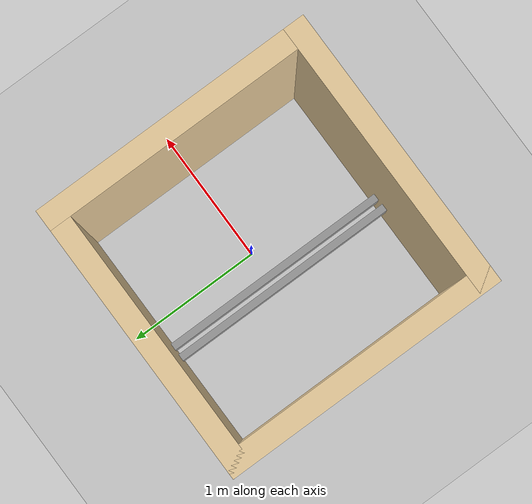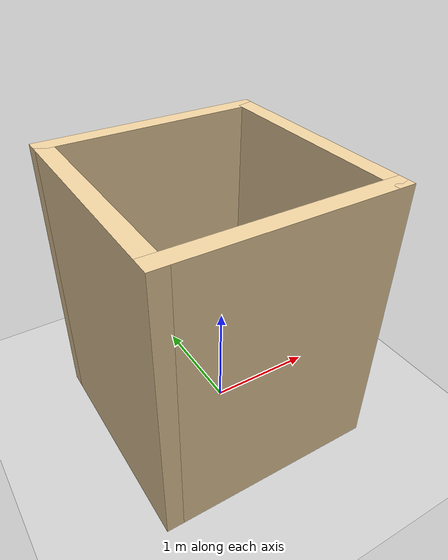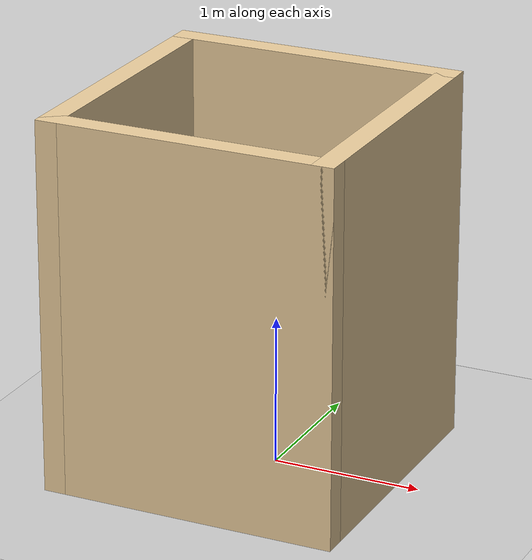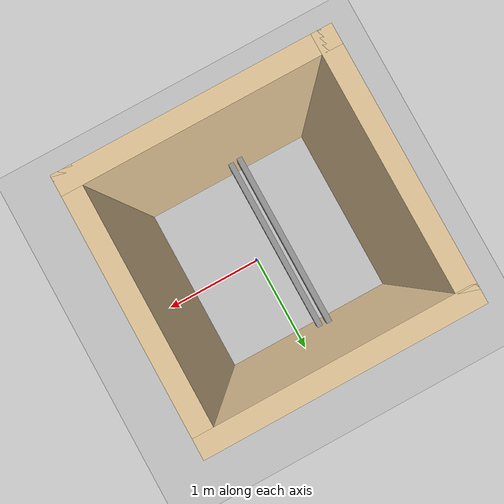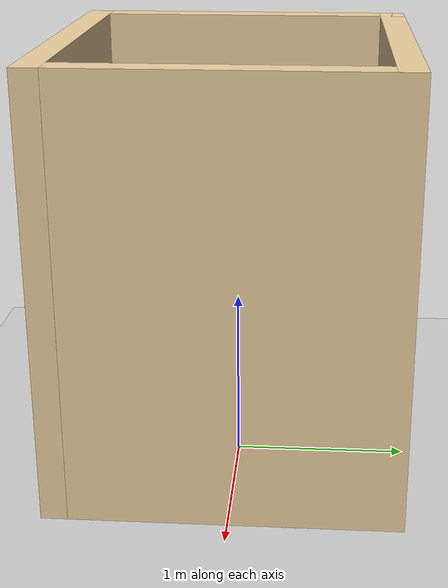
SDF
<sdf version="1.6">
 <world name="default">
  <light name="sun" type="directional">
   <pose>0 0 10 0 -0 0</pose>
   <diffuse>0.8 0.8 0.8 1</diffuse>
   <specular>0.2 0.2 0.2 1</specular>
   <attenuation>
    <range>1000</range>
    <constant>0.9</constant>
    <linear>0.01</linear>
    <quadratic>0.001</quadratic>
   </attenuation>
   <direction>-0.5 0.1 -0.9</direction>
  </light>
  <model name="ground_plane">
   <static>1</static>
   <link name="link">
    <visual name="visual">
     <cast_shadows>0</cast_shadows>
     <geometry><plane><normal>0 0 1</normal><size>100 100</size></plane></geometry>
     <material>
      <script><uri>file://media/materials/scripts/gazebo.material</uri><name>Gazebo/Grey</name></script>
     </material>
    </visual>
   </link>
  </model>
  <gravity>0 0 -9.8</gravity>
  <magnetic_field>6e-06 2.3e-05 -4.2e-05</magnetic_field>
  <atmosphere type="adiabatic"/>
  <physics name="default_physics" default="0" type="ode">
   <max_step_size>0.001</max_step_size>
   <real_time_factor>1</real_time_factor>
   <real_time_update_rate>1000</real_time_update_rate>
  </physics>
  <scene><ambient>0.4 0.4 0.4 1</ambient><background>0.7 0.7 0.7 1</background><shadows>1</shadows></scene>
  <spherical_coordinates>
   <surface_model>EARTH_WGS84</surface_model>
   <latitude_deg>0</latitude_deg>
   <longitude_deg>0</longitude_deg>
   <elevation>0</elevation>
   <heading_deg>0</heading_deg>
  </spherical_coordinates>
  <model name="elerobot_wall_no_collision">
   <link name="Wall_18">
    <pose>0 0.925 0 0 -0 0</pose>
    <visual name="Wall_18_Visual">
     <pose>0 0 1.25 0 -0 0</pose>
     <geometry><box><size>2 0.15 2.5</size></box></geometry>
     <material>
      <script><uri>file://media/materials/scripts/gazebo.material</uri><name>Gazebo/Grey</name></script>
      <ambient>0.921569 0.807843 0.615686 1</ambient>
      <shader type="pixel"/>
     </material>
     <meta><layer>0</layer></meta>
    </visual>
   </link>
   <link name="Wall_25">
    <pose>0.925 0 0 0 0 -1.5708</pose>
    <visual name="Wall_25_Visual">
     <pose>0 0 1.25 0 -0 0</pose>
     <geometry><box><size>2 0.15 2.5</size></box></geometry>
     <material>
      <script><uri>file://media/materials/scripts/gazebo.material</uri><name>Gazebo/Grey</name></script>
      <ambient>0.921569 0.807843 0.615686 1</ambient>
      <shader type="pixel"/>
     </material>
     <meta><layer>0</layer></meta>
    </visual>
   </link>
   <link name="Wall_26">
    <pose>0 -0.925 0 0 -0 3.14159</pose>
    <visual name="Wall_26_Visual">
     <pose>0 0 1.25 0 -0 0</pose>
     <geometry><box><size>2 0.15 2.5</size></box></geometry>
     <material>
      <script><uri>file://media/materials/scripts/gazebo.material</uri><name>Gazebo/Grey</name></script>
      <ambient>0.921569 0.807843 0.615686 1</ambient>
      <shader type="pixel"/>
     </material>
     <meta><layer>0</layer></meta>
    </visual>
   </link>
   <link name="Wall_28">
    <pose>-0.925 0 0 0 0 -1.5708</pose>
    <visual name="Wall_28_Visual">
     <pose>0 0 1.25 0 -0 0</pose>
     <geometry><box><size>2 0.15 2.5</size></box></geometry>
     <material>
      <script><uri>file://media/materials/scripts/gazebo.material</uri><name>Gazebo/Grey</name></script>
      <ambient>0.921569 0.807843 0.615686 1</ambient>
      <shader type="pixel"/>
     </material>
     <meta><layer>0</layer></meta>
    </visual>
   </link>
   <static>1</static>
   <pose>-0.145608 -0.033787 0 0 -0 0</pose>
  </model>
  <model name="unit_box_no_gravity_no_collision">
   <static>1</static>
   <link name="link">
    <inertial>
     <mass>1</mass>
     <inertia>
      <ixx>0.166667</ixx>
      <ixy>0</ixy>
      <ixz>0</ixz>
      <iyy>0.166667</iyy>
      <iyz>0</iyz>
      <izz>0.166667</izz>
     </inertia>
    </inertial>
    <visual name="visual">
     <geometry><box><size>0.052555 1.89195 0.242124</size></box></geometry>
     <material>
      <script><name>Gazebo/Grey</name><uri>file://media/materials/scripts/gazebo.material</uri></script>
      <shader type="pixel"><normal_map>__default__</normal_map></shader>
     </material>
    </visual>
   </link>
   <static>0</static>
   <pose>-0.308922 -0.05806 0.556767 0 0.000445 -3.1e-05</pose>
  </model>
  <model name="unit_box_no_gravity_no_collision_clone">
   <static>1</static>
   <link name="link">
    <inertial>
     <mass>1</mass>
     <inertia>
      <ixx>0.166667</ixx>
      <ixy>0</ixy>
      <ixz>0</ixz>
      <iyy>0.166667</iyy>
      <iyz>0</iyz>
      <izz>0.166667</izz>
     </inertia>
    </inertial>
    <visual name="visual">
     <geometry><box><size>0.052555 1.89195 0.242124</size></box></geometry>
     <material>
      <script><name>Gazebo/Grey</name><uri>file://media/materials/scripts/gazebo.material</uri></script>
      <shader type="pixel"><normal_map>__default__</normal_map></shader>
     </material>
    </visual>
   </link>
   <static>0</static>
   <pose>-0.219368 -0.063503 0.505963 0 0.000445 -3.1e-05</pose>
  </model>
 </world>
</sdf>
